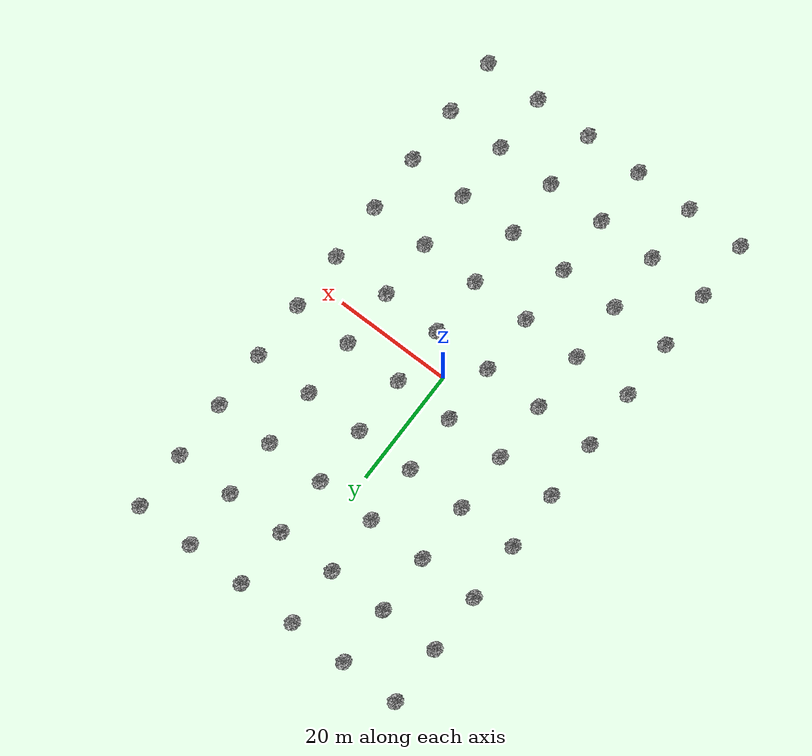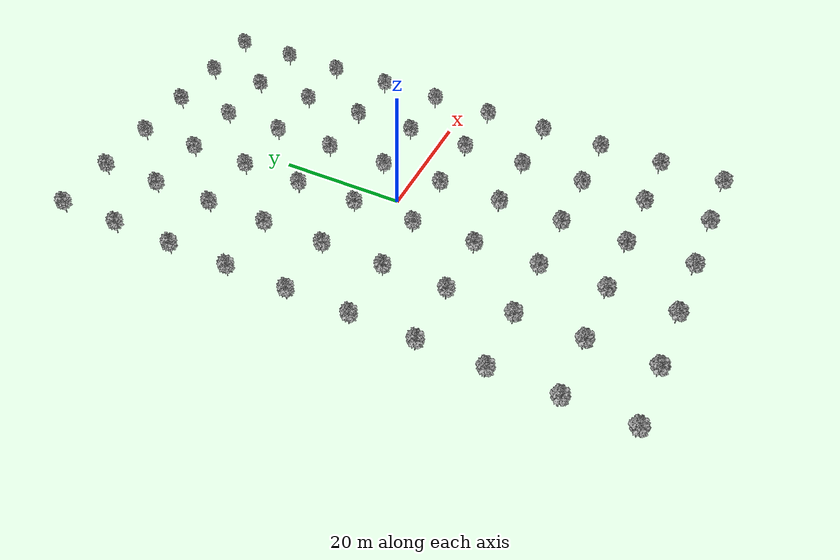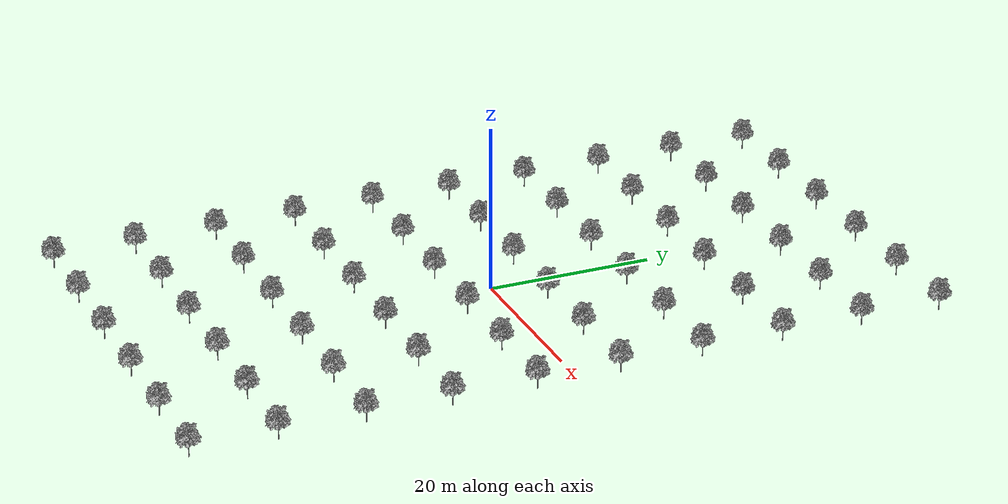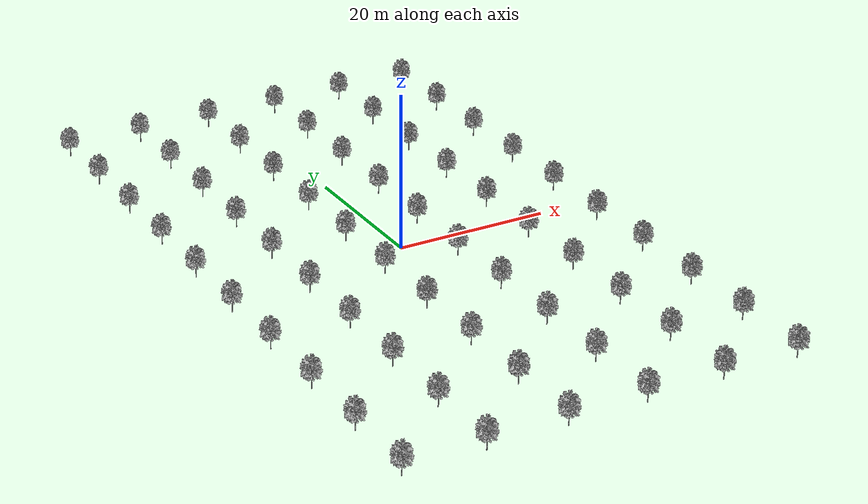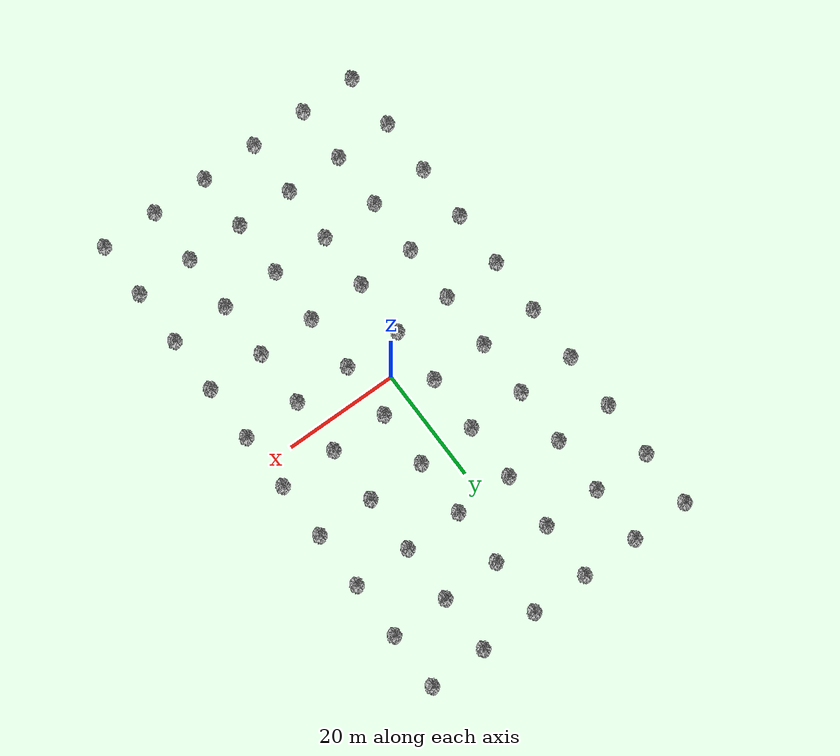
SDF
<sdf version="1.9">
 <world name="apple_orchard_100x75_final">
  <static>true</static>
  <physics type="ode">
   <max_step_size>0.004</max_step_size>
   <real_time_factor>1.0</real_time_factor>
   <real_time_update_rate>250</real_time_update_rate>
  </physics>
  <gravity>0 0 -9.8</gravity>
  <magnetic_field>6e-06 2.3e-05 -4.2e-05</magnetic_field>
  <atmosphere type="adiabatic"/>
  <scene>
   <grid>false</grid>
   <ambient>0.4 0.4 0.4 1</ambient>
   <background>0.7 0.7 0.7 1</background>
   <shadows>true</shadows>
  </scene>
  <include><uri>model://appletree</uri><name>AppleTree_0</name><pose>-25 -45 0 0 0 0</pose></include>
  <include><uri>model://appletree</uri><name>AppleTree_1</name><pose>-25 -35 0 0 0 0</pose></include>
  <include><uri>model://appletree</uri><name>AppleTree_2</name><pose>-25 -25 0 0 0 0</pose></include>
  <include><uri>model://appletree</uri><name>AppleTree_3</name><pose>-25 -15 0 0 0 0</pose></include>
  <include><uri>model://appletree</uri><name>AppleTree_4</name><pose>-25 -5 0 0 0 0</pose></include>
  <include><uri>model://appletree</uri><name>AppleTree_5</name><pose>-25 5 0 0 0 0</pose></include>
  <include><uri>model://appletree</uri><name>AppleTree_6</name><pose>-25 15 0 0 0 0</pose></include>
  <include><uri>model://appletree</uri><name>AppleTree_7</name><pose>-25 25 0 0 0 0</pose></include>
  <include><uri>model://appletree</uri><name>AppleTree_8</name><pose>-25 35 0 0 0 0</pose></include>
  <include><uri>model://appletree</uri><name>AppleTree_9</name><pose>-25 45 0 0 0 0</pose></include>
  <include><uri>model://appletree</uri><name>AppleTree_10</name><pose>-15 -45 0 0 0 0</pose></include>
  <include><uri>model://appletree</uri><name>AppleTree_11</name><pose>-15 -35 0 0 0 0</pose></include>
  <include><uri>model://appletree</uri><name>AppleTree_12</name><pose>-15 -25 0 0 0 0</pose></include>
  <include><uri>model://appletree</uri><name>AppleTree_13</name><pose>-15 -15 0 0 0 0</pose></include>
  <include><uri>model://appletree</uri><name>AppleTree_14</name><pose>-15 -5 0 0 0 0</pose></include>
  <include><uri>model://appletree</uri><name>AppleTree_15</name><pose>-15 5 0 0 0 0</pose></include>
  <include><uri>model://appletree</uri><name>AppleTree_16</name><pose>-15 15 0 0 0 0</pose></include>
  <include><uri>model://appletree</uri><name>AppleTree_17</name><pose>-15 25 0 0 0 0</pose></include>
  <include><uri>model://appletree</uri><name>AppleTree_18</name><pose>-15 35 0 0 0 0</pose></include>
  <include><uri>model://appletree</uri><name>AppleTree_19</name><pose>-15 45 0 0 0 0</pose></include>
  <include><uri>model://appletree</uri><name>AppleTree_20</name><pose>-5 -45 0 0 0 0</pose></include>
  <include><uri>model://appletree</uri><name>AppleTree_21</name><pose>-5 -35 0 0 0 0</pose></include>
  <include><uri>model://appletree</uri><name>AppleTree_22</name><pose>-5 -25 0 0 0 0</pose></include>
  <include><uri>model://appletree</uri><name>AppleTree_23</name><pose>-5 -15 0 0 0 0</pose></include>
  <include><uri>model://appletree</uri><name>AppleTree_24</name><pose>-5 -5 0 0 0 0</pose></include>
  <include><uri>model://appletree</uri><name>AppleTree_25</name><pose>-5 5 0 0 0 0</pose></include>
  <include><uri>model://appletree</uri><name>AppleTree_26</name><pose>-5 15 0 0 0 0</pose></include>
  <include><uri>model://appletree</uri><name>AppleTree_27</name><pose>-5 25 0 0 0 0</pose></include>
  <include><uri>model://appletree</uri><name>AppleTree_28</name><pose>-5 35 0 0 0 0</pose></include>
  <include><uri>model://appletree</uri><name>AppleTree_29</name><pose>-5 45 0 0 0 0</pose></include>
  <include><uri>model://appletree</uri><name>AppleTree_30</name><pose>5 -45 0 0 0 0</pose></include>
  <include><uri>model://appletree</uri><name>AppleTree_31</name><pose>5 -35 0 0 0 0</pose></include>
  <include><uri>model://appletree</uri><name>AppleTree_32</name><pose>5 -25 0 0 0 0</pose></include>
  <include><uri>model://appletree</uri><name>AppleTree_33</name><pose>5 -15 0 0 0 0</pose></include>
  <include><uri>model://appletree</uri><name>AppleTree_34</name><pose>5 -5 0 0 0 0</pose></include>
  <include><uri>model://appletree</uri><name>AppleTree_35</name><pose>5 5 0 0 0 0</pose></include>
  <include><uri>model://appletree</uri><name>AppleTree_36</name><pose>5 15 0 0 0 0</pose></include>
  <include><uri>model://appletree</uri><name>AppleTree_37</name><pose>5 25 0 0 0 0</pose></include>
  <include><uri>model://appletree</uri><name>AppleTree_38</name><pose>5 35 0 0 0 0</pose></include>
  <include><uri>model://appletree</uri><name>AppleTree_39</name><pose>5 45 0 0 0 0</pose></include>
  <include><uri>model://appletree</uri><name>AppleTree_40</name><pose>15 -45 0 0 0 0</pose></include>
  <include><uri>model://appletree</uri><name>AppleTree_41</name><pose>15 -35 0 0 0 0</pose></include>
  <include><uri>model://appletree</uri><name>AppleTree_42</name><pose>15 -25 0 0 0 0</pose></include>
  <include><uri>model://appletree</uri><name>AppleTree_43</name><pose>15 -15 0 0 0 0</pose></include>
  <include><uri>model://appletree</uri><name>AppleTree_44</name><pose>15 -5 0 0 0 0</pose></include>
  <include><uri>model://appletree</uri><name>AppleTree_45</name><pose>15 5 0 0 0 0</pose></include>
  <include><uri>model://appletree</uri><name>AppleTree_46</name><pose>15 15 0 0 0 0</pose></include>
  <include><uri>model://appletree</uri><name>AppleTree_47</name><pose>15 25 0 0 0 0</pose></include>
  <include><uri>model://appletree</uri><name>AppleTree_48</name><pose>15 35 0 0 0 0</pose></include>
  <include><uri>model://appletree</uri><name>AppleTree_49</name><pose>15 45 0 0 0 0</pose></include>
  <include><uri>model://appletree</uri><name>AppleTree_50</name><pose>25 -45 0 0 0 0</pose></include>
  <include><uri>model://appletree</uri><name>AppleTree_51</name><pose>25 -35 0 0 0 0</pose></include>
  <include><uri>model://appletree</uri><name>AppleTree_52</name><pose>25 -25 0 0 0 0</pose></include>
  <include><uri>model://appletree</uri><name>AppleTree_53</name><pose>25 -15 0 0 0 0</pose></include>
  <include><uri>model://appletree</uri><name>AppleTree_54</name><pose>25 -5 0 0 0 0</pose></include>
  <include><uri>model://appletree</uri><name>AppleTree_55</name><pose>25 5 0 0 0 0</pose></include>
  <include><uri>model://appletree</uri><name>AppleTree_56</name><pose>25 15 0 0 0 0</pose></include>
  <include><uri>model://appletree</uri><name>AppleTree_57</name><pose>25 25 0 0 0 0</pose></include>
  <include><uri>model://appletree</uri><name>AppleTree_58</name><pose>25 35 0 0 0 0</pose></include>
  <include><uri>model://appletree</uri><name>AppleTree_59</name><pose>25 45 0 0 0 0</pose></include>
  <light name="sunUTC" type="directional">
   <pose>0 0 500 0 -0 0</pose>
   <intensity>1</intensity>
   <direction>0.001 0.625 -0.78</direction>
   <diffuse>0.904 0.904 0.904 1</diffuse>
   <specular>0.271 0.271 0.271 1</specular>
   <attenuation><range>2000</range><linear>0</linear><constant>1</constant><quadratic>0</quadratic></attenuation>
   <spot><inner_angle>0</inner_angle><outer_angle>0</outer_angle><falloff>0</falloff></spot>
  </light>
  <spherical_coordinates>
   <surface_model>EARTH_WGS84</surface_model>
   <world_frame_orientation>ENU</world_frame_orientation>
   <latitude_deg>59.368777766897644</latitude_deg>
   <longitude_deg>10.44569891165301</longitude_deg>
   <elevation>0</elevation>
  </spherical_coordinates>
 </world>
</sdf>

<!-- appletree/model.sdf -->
<sdf version="1.9">
  <model name="appletree">
    <static>true</static>
    <link name="link">

      <!-- Use the exact same mesh for collisions! -->
      <collision name="collision">
        <!-- Exact same pose as the visual -->
        <pose>0 0 0 0 0 0</pose>
        <geometry>
          <mesh>
            <uri>model://appletree/meshes/appletree.obj</uri>
            <scale>8 8 8</scale>
          </mesh>
        </geometry>
      </collision>

      <!-- The visual mesh -->
      <visual name="visual">
        <pose>0 0 0 0 0 0</pose>
        <geometry>
          <mesh>
            <uri>model://appletree/meshes/appletree.obj</uri>
            <scale>8 8 8</scale>
          </mesh>
        </geometry>
      </visual>

    </link>
  </model>
</sdf>
